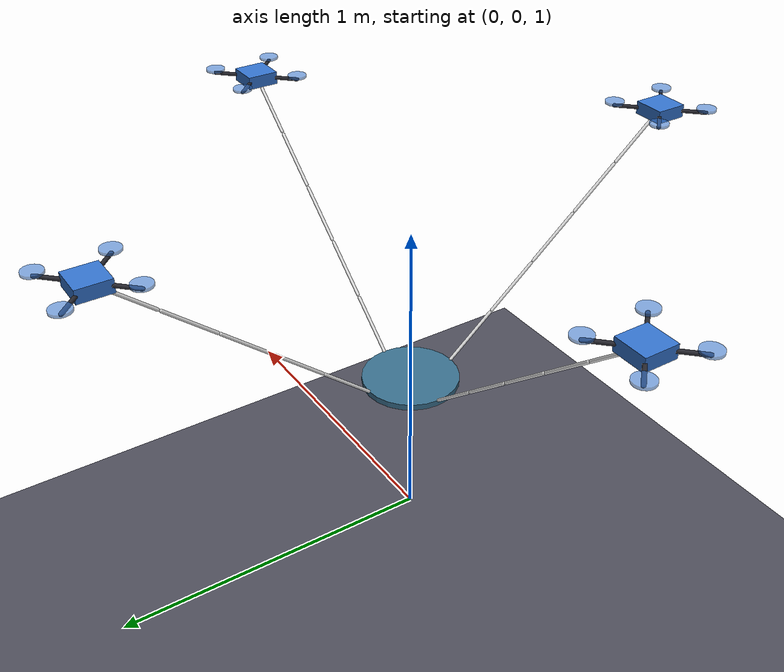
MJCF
<mujoco model="multilift">
  <option timestep="0.002" integrator="implicitfast" cone="elliptic"/>
  <compiler angle="radian" autolimits="true"/>
  <visual><global offwidth="1280" offheight="720"/><map force="0.003"/></visual>
  <worldbody>
    <light pos="0 0 6" dir="0 0 -1" diffuse="0.8 0.8 0.8"/>
    <geom name="floor" type="plane" size="40 40 0.1" rgba="0.3 0.3 0.35 1"/>
    <body name="payload" pos="0 0 1.5"><freejoint/><geom type="cylinder" size="0.15 0.009375" rgba="0.22 0.43 0.55 1"/><inertial pos="0 0 0" mass="2" diaginertia="0.0113086 0.0113086 0.0225"/><body name="rope0_link0" pos="0.15 0 0.009375" quat="0.906308 0 0.422618 0"><joint type="ball" damping="0.01" armature="1e-06"/><geom type="capsule" fromto="0 0 0 0 0 0.19" size="0.005" mass="0.008" contype="0" conaffinity="0" rgba="0.85 0.85 0.85 1"/><body name="rope0_link1" pos="0 0 0.2"><joint type="ball" damping="0.01" armature="1e-06"/><geom type="capsule" fromto="0 0 0 0 0 0.19" size="0.005" mass="0.008" contype="0" conaffinity="0" rgba="0.85 0.85 0.85 1"/><body name="rope0_link2" pos="0 0 0.2"><joint type="ball" damping="0.01" armature="1e-06"/><geom type="capsule" fromto="0 0 0 0 0 0.19" size="0.005" mass="0.008" contype="0" conaffinity="0" rgba="0.85 0.85 0.85 1"/><body name="rope0_link3" pos="0 0 0.2"><joint type="ball" damping="0.01" armature="1e-06"/><geom type="capsule" fromto="0 0 0 0 0 0.19" size="0.005" mass="0.008" contype="0" conaffinity="0" rgba="0.85 0.85 0.85 1"/><body name="rope0_link4" pos="0 0 0.2"><joint type="ball" damping="0.01" armature="1e-06"/><geom type="capsule" fromto="0 0 0 0 0 0.19" size="0.005" mass="0.008" contype="0" conaffinity="0" rgba="0.85 0.85 0.85 1"/><body name="drone0" pos="0 0 0.212" quat="0.906308 -0 -0.422618 -0"><joint type="ball" damping="0.01" armature="1e-06"/><inertial pos="0 0 0" mass="1.09" diaginertia="0.004421 0.006721 0.010024"/><geom type="box" size="0.05 0.05 0.02" mass="0" rgba="0.2 0.45 0.8 1"/><geom type="capsule" fromto="0 0 0 0.09899 0.09899 0" size="0.006" mass="0" contype="0" conaffinity="0" rgba="0.15 0.15 0.18 1"/><geom type="cylinder" pos="0.09899 0.09899 0.012" size="0.03 0.004" mass="0" contype="0" conaffinity="0" rgba="0.2 0.45 0.8 0.6"/><geom type="capsule" fromto="0 0 0 0.09899 -0.09899 0" size="0.006" mass="0" contype="0" conaffinity="0" rgba="0.15 0.15 0.18 1"/><geom type="cylinder" pos="0.09899 -0.09899 0.012" size="0.03 0.004" mass="0" contype="0" conaffinity="0" rgba="0.2 0.45 0.8 0.6"/><geom type="capsule" fromto="0 0 0 -0.09899 0.09899 0" size="0.006" mass="0" contype="0" conaffinity="0" rgba="0.15 0.15 0.18 1"/><geom type="cylinder" pos="-0.09899 0.09899 0.012" size="0.03 0.004" mass="0" contype="0" conaffinity="0" rgba="0.2 0.45 0.8 0.6"/><geom type="capsule" fromto="0 0 0 -0.09899 -0.09899 0" size="0.006" mass="0" contype="0" conaffinity="0" rgba="0.15 0.15 0.18 1"/><geom type="cylinder" pos="-0.09899 -0.09899 0.012" size="0.03 0.004" mass="0" contype="0" conaffinity="0" rgba="0.2 0.45 0.8 0.6"/><site name="drone0_site" pos="0 0 0" size="0.01" rgba="1 1 0 0.3"/></body></body></body></body></body></body><body name="rope1_link0" pos="9.18485e-18 0.15 0.009375" quat="0.906308 -0.422618 2.58779e-17 0"><joint type="ball" damping="0.01" armature="1e-06"/><geom type="capsule" fromto="0 0 0 0 0 0.19" size="0.005" mass="0.008" contype="0" conaffinity="0" rgba="0.85 0.85 0.85 1"/><body name="rope1_link1" pos="0 0 0.2"><joint type="ball" damping="0.01" armature="1e-06"/><geom type="capsule" fromto="0 0 0 0 0 0.19" size="0.005" mass="0.008" contype="0" conaffinity="0" rgba="0.85 0.85 0.85 1"/><body name="rope1_link2" pos="0 0 0.2"><joint type="ball" damping="0.01" armature="1e-06"/><geom type="capsule" fromto="0 0 0 0 0 0.19" size="0.005" mass="0.008" contype="0" conaffinity="0" rgba="0.85 0.85 0.85 1"/><body name="rope1_link3" pos="0 0 0.2"><joint type="ball" damping="0.01" armature="1e-06"/><geom type="capsule" fromto="0 0 0 0 0 0.19" size="0.005" mass="0.008" contype="0" conaffinity="0" rgba="0.85 0.85 0.85 1"/><body name="rope1_link4" pos="0 0 0.2"><joint type="ball" damping="0.01" armature="1e-06"/><geom type="capsule" fromto="0 0 0 0 0 0.19" size="0.005" mass="0.008" contype="0" conaffinity="0" rgba="0.85 0.85 0.85 1"/><body name="drone1" pos="0 0 0.212" quat="0.906308 0.422618 -2.58779e-17 -0"><joint type="ball" damping="0.01" armature="1e-06"/><inertial pos="0 0 0" mass="1.09" diaginertia="0.004421 0.006721 0.010024"/><geom type="box" size="0.05 0.05 0.02" mass="0" rgba="0.2 0.45 0.8 1"/><geom type="capsule" fromto="0 0 0 0.09899 0.09899 0" size="0.006" mass="0" contype="0" conaffinity="0" rgba="0.15 0.15 0.18 1"/><geom type="cylinder" pos="0.09899 0.09899 0.012" size="0.03 0.004" mass="0" contype="0" conaffinity="0" rgba="0.2 0.45 0.8 0.6"/><geom type="capsule" fromto="0 0 0 0.09899 -0.09899 0" size="0.006" mass="0" contype="0" conaffinity="0" rgba="0.15 0.15 0.18 1"/><geom type="cylinder" pos="0.09899 -0.09899 0.012" size="0.03 0.004" mass="0" contype="0" conaffinity="0" rgba="0.2 0.45 0.8 0.6"/><geom type="capsule" fromto="0 0 0 -0.09899 0.09899 0" size="0.006" mass="0" contype="0" conaffinity="0" rgba="0.15 0.15 0.18 1"/><geom type="cylinder" pos="-0.09899 0.09899 0.012" size="0.03 0.004" mass="0" contype="0" conaffinity="0" rgba="0.2 0.45 0.8 0.6"/><geom type="capsule" fromto="0 0 0 -0.09899 -0.09899 0" size="0.006" mass="0" contype="0" conaffinity="0" rgba="0.15 0.15 0.18 1"/><geom type="cylinder" pos="-0.09899 -0.09899 0.012" size="0.03 0.004" mass="0" contype="0" conaffinity="0" rgba="0.2 0.45 0.8 0.6"/><site name="drone1_site" pos="0 0 0" size="0.01" rgba="1 1 0 0.3"/></body></body></body></body></body></body><body name="rope2_link0" pos="-0.15 1.83697e-17 0.009375" quat="0.906308 -5.17558e-17 -0.422618 0"><joint type="ball" damping="0.01" armature="1e-06"/><geom type="capsule" fromto="0 0 0 0 0 0.19" size="0.005" mass="0.008" contype="0" conaffinity="0" rgba="0.85 0.85 0.85 1"/><body name="rope2_link1" pos="0 0 0.2"><joint type="ball" damping="0.01" armature="1e-06"/><geom type="capsule" fromto="0 0 0 0 0 0.19" size="0.005" mass="0.008" contype="0" conaffinity="0" rgba="0.85 0.85 0.85 1"/><body name="rope2_link2" pos="0 0 0.2"><joint type="ball" damping="0.01" armature="1e-06"/><geom type="capsule" fromto="0 0 0 0 0 0.19" size="0.005" mass="0.008" contype="0" conaffinity="0" rgba="0.85 0.85 0.85 1"/><body name="rope2_link3" pos="0 0 0.2"><joint type="ball" damping="0.01" armature="1e-06"/><geom type="capsule" fromto="0 0 0 0 0 0.19" size="0.005" mass="0.008" contype="0" conaffinity="0" rgba="0.85 0.85 0.85 1"/><body name="rope2_link4" pos="0 0 0.2"><joint type="ball" damping="0.01" armature="1e-06"/><geom type="capsule" fromto="0 0 0 0 0 0.19" size="0.005" mass="0.008" contype="0" conaffinity="0" rgba="0.85 0.85 0.85 1"/><body name="drone2" pos="0 0 0.212" quat="0.906308 5.17558e-17 0.422618 -0"><joint type="ball" damping="0.01" armature="1e-06"/><inertial pos="0 0 0" mass="1.09" diaginertia="0.004421 0.006721 0.010024"/><geom type="box" size="0.05 0.05 0.02" mass="0" rgba="0.2 0.45 0.8 1"/><geom type="capsule" fromto="0 0 0 0.09899 0.09899 0" size="0.006" mass="0" contype="0" conaffinity="0" rgba="0.15 0.15 0.18 1"/><geom type="cylinder" pos="0.09899 0.09899 0.012" size="0.03 0.004" mass="0" contype="0" conaffinity="0" rgba="0.2 0.45 0.8 0.6"/><geom type="capsule" fromto="0 0 0 0.09899 -0.09899 0" size="0.006" mass="0" contype="0" conaffinity="0" rgba="0.15 0.15 0.18 1"/><geom type="cylinder" pos="0.09899 -0.09899 0.012" size="0.03 0.004" mass="0" contype="0" conaffinity="0" rgba="0.2 0.45 0.8 0.6"/><geom type="capsule" fromto="0 0 0 -0.09899 0.09899 0" size="0.006" mass="0" contype="0" conaffinity="0" rgba="0.15 0.15 0.18 1"/><geom type="cylinder" pos="-0.09899 0.09899 0.012" size="0.03 0.004" mass="0" contype="0" conaffinity="0" rgba="0.2 0.45 0.8 0.6"/><geom type="capsule" fromto="0 0 0 -0.09899 -0.09899 0" size="0.006" mass="0" contype="0" conaffinity="0" rgba="0.15 0.15 0.18 1"/><geom type="cylinder" pos="-0.09899 -0.09899 0.012" size="0.03 0.004" mass="0" contype="0" conaffinity="0" rgba="0.2 0.45 0.8 0.6"/><site name="drone2_site" pos="0 0 0" size="0.01" rgba="1 1 0 0.3"/></body></body></body></body></body></body><body name="rope3_link0" pos="-2.75546e-17 -0.15 0.009375" quat="0.906308 0.422618 -7.76337e-17 0"><joint type="ball" damping="0.01" armature="1e-06"/><geom type="capsule" fromto="0 0 0 0 0 0.19" size="0.005" mass="0.008" contype="0" conaffinity="0" rgba="0.85 0.85 0.85 1"/><body name="rope3_link1" pos="0 0 0.2"><joint type="ball" damping="0.01" armature="1e-06"/><geom type="capsule" fromto="0 0 0 0 0 0.19" size="0.005" mass="0.008" contype="0" conaffinity="0" rgba="0.85 0.85 0.85 1"/><body name="rope3_link2" pos="0 0 0.2"><joint type="ball" damping="0.01" armature="1e-06"/><geom type="capsule" fromto="0 0 0 0 0 0.19" size="0.005" mass="0.008" contype="0" conaffinity="0" rgba="0.85 0.85 0.85 1"/><body name="rope3_link3" pos="0 0 0.2"><joint type="ball" damping="0.01" armature="1e-06"/><geom type="capsule" fromto="0 0 0 0 0 0.19" size="0.005" mass="0.008" contype="0" conaffinity="0" rgba="0.85 0.85 0.85 1"/><body name="rope3_link4" pos="0 0 0.2"><joint type="ball" damping="0.01" armature="1e-06"/><geom type="capsule" fromto="0 0 0 0 0 0.19" size="0.005" mass="0.008" contype="0" conaffinity="0" rgba="0.85 0.85 0.85 1"/><body name="drone3" pos="0 0 0.212" quat="0.906308 -0.422618 7.76337e-17 -0"><joint type="ball" damping="0.01" armature="1e-06"/><inertial pos="0 0 0" mass="1.09" diaginertia="0.004421 0.006721 0.010024"/><geom type="box" size="0.05 0.05 0.02" mass="0" rgba="0.2 0.45 0.8 1"/><geom type="capsule" fromto="0 0 0 0.09899 0.09899 0" size="0.006" mass="0" contype="0" conaffinity="0" rgba="0.15 0.15 0.18 1"/><geom type="cylinder" pos="0.09899 0.09899 0.012" size="0.03 0.004" mass="0" contype="0" conaffinity="0" rgba="0.2 0.45 0.8 0.6"/><geom type="capsule" fromto="0 0 0 0.09899 -0.09899 0" size="0.006" mass="0" contype="0" conaffinity="0" rgba="0.15 0.15 0.18 1"/><geom type="cylinder" pos="0.09899 -0.09899 0.012" size="0.03 0.004" mass="0" contype="0" conaffinity="0" rgba="0.2 0.45 0.8 0.6"/><geom type="capsule" fromto="0 0 0 -0.09899 0.09899 0" size="0.006" mass="0" contype="0" conaffinity="0" rgba="0.15 0.15 0.18 1"/><geom type="cylinder" pos="-0.09899 0.09899 0.012" size="0.03 0.004" mass="0" contype="0" conaffinity="0" rgba="0.2 0.45 0.8 0.6"/><geom type="capsule" fromto="0 0 0 -0.09899 -0.09899 0" size="0.006" mass="0" contype="0" conaffinity="0" rgba="0.15 0.15 0.18 1"/><geom type="cylinder" pos="-0.09899 -0.09899 0.012" size="0.03 0.004" mass="0" contype="0" conaffinity="0" rgba="0.2 0.45 0.8 0.6"/><site name="drone3_site" pos="0 0 0" size="0.01" rgba="1 1 0 0.3"/></body></body></body></body></body></body></body>
  </worldbody>
  <actuator><motor name="drone0_w0" site="drone0_site" gear="1 0 0 0 0 0" ctrlrange="-200 200"/><motor name="drone0_w1" site="drone0_site" gear="0 1 0 0 0 0" ctrlrange="-200 200"/><motor name="drone0_w2" site="drone0_site" gear="0 0 1 0 0 0" ctrlrange="-200 200"/><motor name="drone0_w3" site="drone0_site" gear="0 0 0 1 0 0" ctrlrange="-200 200"/><motor name="drone0_w4" site="drone0_site" gear="0 0 0 0 1 0" ctrlrange="-200 200"/><motor name="drone0_w5" site="drone0_site" gear="0 0 0 0 0 1" ctrlrange="-200 200"/><motor name="drone1_w0" site="drone1_site" gear="1 0 0 0 0 0" ctrlrange="-200 200"/><motor name="drone1_w1" site="drone1_site" gear="0 1 0 0 0 0" ctrlrange="-200 200"/><motor name="drone1_w2" site="drone1_site" gear="0 0 1 0 0 0" ctrlrange="-200 200"/><motor name="drone1_w3" site="drone1_site" gear="0 0 0 1 0 0" ctrlrange="-200 200"/><motor name="drone1_w4" site="drone1_site" gear="0 0 0 0 1 0" ctrlrange="-200 200"/><motor name="drone1_w5" site="drone1_site" gear="0 0 0 0 0 1" ctrlrange="-200 200"/><motor name="drone2_w0" site="drone2_site" gear="1 0 0 0 0 0" ctrlrange="-200 200"/><motor name="drone2_w1" site="drone2_site" gear="0 1 0 0 0 0" ctrlrange="-200 200"/><motor name="drone2_w2" site="drone2_site" gear="0 0 1 0 0 0" ctrlrange="-200 200"/><motor name="drone2_w3" site="drone2_site" gear="0 0 0 1 0 0" ctrlrange="-200 200"/><motor name="drone2_w4" site="drone2_site" gear="0 0 0 0 1 0" ctrlrange="-200 200"/><motor name="drone2_w5" site="drone2_site" gear="0 0 0 0 0 1" ctrlrange="-200 200"/><motor name="drone3_w0" site="drone3_site" gear="1 0 0 0 0 0" ctrlrange="-200 200"/><motor name="drone3_w1" site="drone3_site" gear="0 1 0 0 0 0" ctrlrange="-200 200"/><motor name="drone3_w2" site="drone3_site" gear="0 0 1 0 0 0" ctrlrange="-200 200"/><motor name="drone3_w3" site="drone3_site" gear="0 0 0 1 0 0" ctrlrange="-200 200"/><motor name="drone3_w4" site="drone3_site" gear="0 0 0 0 1 0" ctrlrange="-200 200"/><motor name="drone3_w5" site="drone3_site" gear="0 0 0 0 0 1" ctrlrange="-200 200"/></actuator>
</mujoco>
